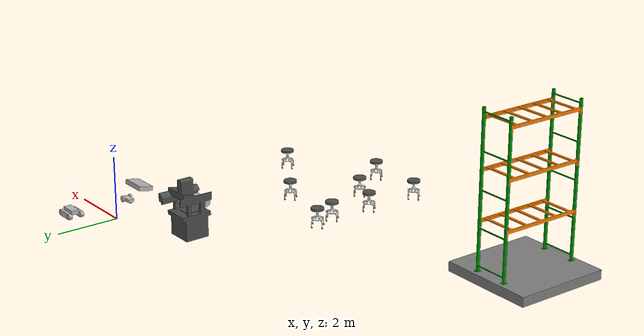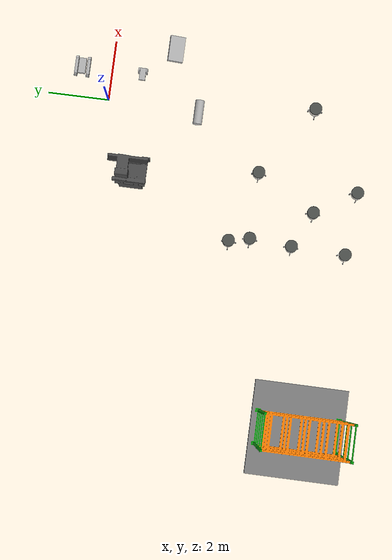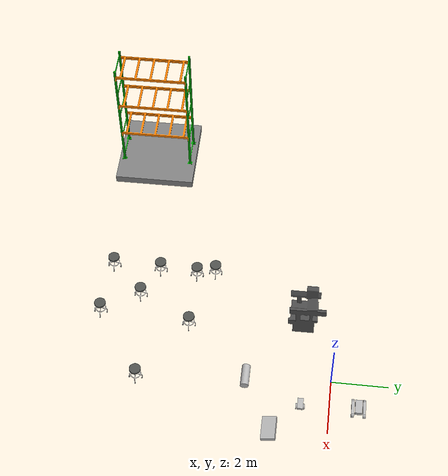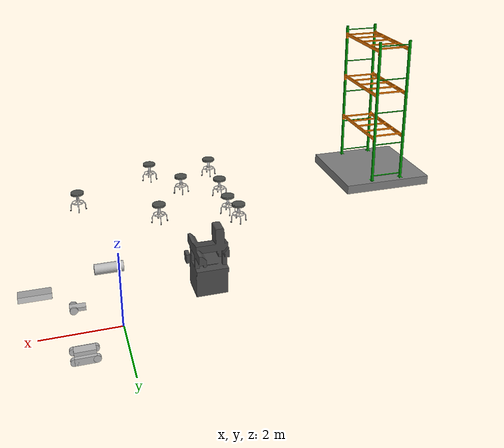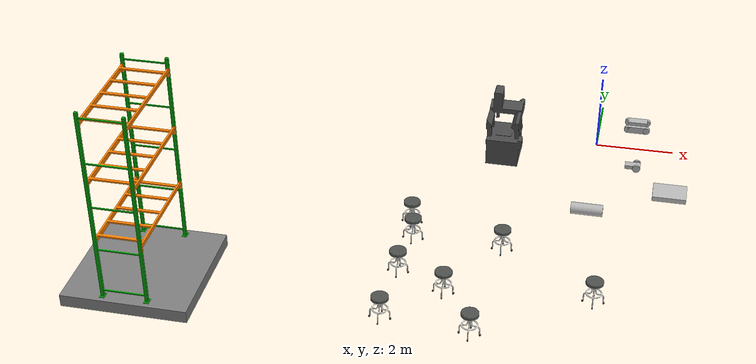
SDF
<sdf version="1.6">
 <world name="default">
  <include><uri>model://sun</uri></include>
  <gravity>0 0 -9.8</gravity>
  <magnetic_field>6e-06 2.3e-05 -4.2e-05</magnetic_field>
  <atmosphere type="adiabatic"/>
  <physics type="ode">
   <max_step_size>0.003</max_step_size>
   <real_time_factor>1</real_time_factor>
   <real_time_update_rate>500</real_time_update_rate>
   <ode>
    <solver>
     <type>quick</type>
     <precon_iters>30</precon_iters>
     <thread_position_correction>1</thread_position_correction>
     <use_dynamic_moi_rescaling>1</use_dynamic_moi_rescaling>
    </solver>
    <constraints><contact_max_correcting_vel>10</contact_max_correcting_vel></constraints>
   </ode>
  </physics>
  <scene><ambient>0.5 0.5 0.5 1</ambient><background>0.8 0.8 0.8 1</background><shadows>1</shadows></scene>
  <spherical_coordinates>
   <surface_model>EARTH_WGS84</surface_model>
   <latitude_deg>0</latitude_deg>
   <longitude_deg>0</longitude_deg>
   <elevation>0</elevation>
   <heading_deg>0</heading_deg>
  </spherical_coordinates>
  <include><uri>model://tread_drv_robot</uri><pose>1 1 0.1 0 0 0</pose></include>
  <include>
   <uri>model://diff_drv_robot</uri>
   <name>differential_drv_robot</name>
   <pose>1 -1 0 0 0 0</pose>
  </include>
  <model name="cylinder_obstacle">
   <static>1</static>
   <pose>0 -3 -0.06 0 0 0</pose>
   <link name="cylinder">
    <collision name="cylinder_collision">
     <pose>0 0 0 0 1.570796327 0</pose>
     <geometry><cylinder><radius>0.15</radius><length>0.8</length></cylinder></geometry>
     <surface><friction><ode><mu>1</mu></ode></friction></surface>
    </collision>
    <visual name="cylinder_visual">
     <pose>0 0 0 0 1.570796327 0</pose>
     <geometry><cylinder><radius>0.15</radius><length>0.8</length></cylinder></geometry>
    </visual>
   </link>
  </model>
  <model name="box_obstacle">
   <static>1</static>
   <pose>2 -2 0.028 1.7821 0 0</pose>
   <link name="box">
    <collision name="box_collision">
     <geometry><box><size>0.85 0.15 0.50</size></box></geometry>
     <surface><friction><ode><mu>1</mu></ode></friction></surface>
    </collision>
    <visual name="box_visual"><geometry><box><size>0.85 0.15 0.50</size></box></geometry></visual>
   </link>
  </model>
  <include><uri>model://CMM</uri><name>CMM</name><pose>-2.8 -1.6 0 0 -0 0</pose></include>
  <include><uri>model://palletRack</uri><name>palletRack</name><pose>-10 -7.5 0 0 -0 1.57</pose></include>
  <include><uri>model://stool</uri><name>stool</name><pose>-2.09016 -8.47865 0 0 -0 0</pose></include>
  <include><uri>model://stool</uri><name>stool_0</name><pose>-4.14838 -8.31827 0 0 -0 0</pose></include>
  <include><uri>model://stool</uri><name>stool_1</name><pose>-4.09545 -6.56113 0 0 -0 0</pose></include>
  <include><uri>model://stool</uri><name>stool_2</name><pose>-4.00957 -5.19123 0 0 -0 0</pose></include>
  <include><uri>model://stool</uri><name>stool_3</name><pose>-4.16423 -4.51727 0 0 -0 0</pose></include>
  <include><uri>model://stool</uri><name>stool_4</name><pose>-2.91792 -7.13372 0 0 -0 0</pose></include>
  <include><uri>model://stool</uri><name>stool_5</name><pose>-1.83382 -5.21659 0 0 -0 0</pose></include>
  <include><uri>model://stool</uri><name>stool_6</name><pose>0.484549 -6.79469 0 0 -0 0</pose></include>
 </world>
</sdf>

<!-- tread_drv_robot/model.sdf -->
<sdf version='1.4'>
  <model name="simple_tracked">

    <pose frame=''>0 3 0.1 0 0 -1.5708</pose>

    <link name='base_link'>
        <pose frame=''>0 0 0 0 -0 0</pose>
        <inertial>
            <pose frame=''>0 0 0.118 1.5708 -0 0</pose>
            <mass>13.14</mass>
            <inertia>
                <ixx>0.10019</ixx>
                <ixy>0</ixy>
                <ixz>0</ixz>
                <iyy>0.345043</iyy>
                <iyz>0</iyz>
                <izz>0.302044</izz>
            </inertia>
        </inertial>
        <collision name='base_link_collision'>
            <pose frame=''>0 0 0.118 0 -0 0</pose>
            <geometry>
                <box>
                    <size>0.50017 0.24093 0.139</size>
                </box>
            </geometry>
        </collision>
        <visual name='base_link_visual'>
            <pose frame=''>0 0 0.118 0 -0 0</pose>
            <geometry>
                <box>
                    <size>0.50017 0.24093 0.139</size>
                </box>
            </geometry>
        </visual>
        <self_collide>0</self_collide>
        <gravity>1</gravity>
        <kinematic>0</kinematic>
    </link>

    <link name='left_track'>
        <pose frame=''>0 0.1985 0 0 -0 0</pose>
        <inertial>
            <pose frame=''>0 0 0.0141 0 -0 0</pose>
            <mass>6.06</mass>
            <inertia>
                <ixx>0.002731</ixx>
                <ixy>0</ixy>
                <ixz>0</ixz>
                <iyy>0.032554</iyy>
                <iyz>1.5e-05</iyz>
                <izz>0.031391</izz>
            </inertia>
        </inertial>
        <collision name='left_track_collision'>
            <pose frame=''>0 0 0.01855 1.5708 -0 1.5708</pose>
            <geometry>
                <box>
                    <size>0.09728 0.18094 0.5</size>
                </box>
            </geometry>
            <surface>
                <friction>
                    <ode>
                        <mu>0.7</mu>
                        <mu2>150</mu2>
                        <fdir1>0 1 0</fdir1>
                    </ode>
                </friction>
            </surface>
        </collision>
        <collision name='left_track_collision_1'>
            <pose frame=''>0.25 0 0.01855 1.5708 -0 0</pose>
            <geometry>
                <cylinder>
                    <length>0.09728</length>
                    <radius>0.09047</radius>
                </cylinder>
            </geometry>
            <surface>
                <friction>
                    <ode>
                        <mu>0.7</mu>
                        <mu2>150</mu2>
                        <fdir1>0 1 0</fdir1>
                    </ode>
                </friction>
            </surface>
        </collision>
        <collision name='left_track_collision_2'>
            <pose frame=''>-0.25 0 0.01855 1.5708 -0 0</pose>
            <geometry>
                <cylinder>
                    <length>0.09728</length>
                    <radius>0.09047</radius>
                </cylinder>
            </geometry>
            <surface>
                <friction>
                    <ode>
                        <mu>0.7</mu>
                        <mu2>150</mu2>
                        <fdir1>0 1 0</fdir1>
                    </ode>
                </friction>
            </surface>
        </collision>
        <visual name='left_track_visual'>
            <pose frame=''>0 0 0.01855 1.5708 -0 1.5708</pose>
            <geometry>
                <box>
                    <size>0.09728 0.18094 0.5</size>
                </box>
            </geometry>
        </visual>
        <visual name='left_track_visual_1'>
            <pose frame=''>0.25 0 0.01855 1.5708 -0 0</pose>
            <geometry>
                <cylinder>
                    <length>0.09728</length>
                    <radius>0.09047</radius>
                </cylinder>
            </geometry>
        </visual>
        <visual name='left_track_visual_2'>
            <pose frame=''>-0.25 0 0.01855 1.5708 -0 0</pose>
            <geometry>
                <cylinder>
                    <length>0.09728</length>
                    <radius>0.09047</radius>
                </cylinder>
            </geometry>
        </visual>
        <gravity>1</gravity>
        <kinematic>0</kinematic>
    </link>
    <joint name='left_track_j' type='fixed'>
        <child>left_track</child>
        <parent>base_link</parent>
    </joint>

    <link name='right_track'>
        <pose frame=''>0 -0.1985 0 0 -0 0</pose>
        <inertial>
            <pose frame=''>0 0 0.0141 0 -0 0</pose>
            <mass>6.06</mass>
            <inertia>
                <ixx>0.002731</ixx>
                <ixy>0</ixy>
                <ixz>0</ixz>
                <iyy>0.032554</iyy>
                <iyz>1.5e-05</iyz>
                <izz>0.031391</izz>
            </inertia>
        </inertial>
        <collision name='right_track_collision'>
            <pose frame=''>0 0 0.01855 1.5708 -0 1.5708</pose>
            <geometry>
                <box>
                    <size>0.09728 0.18094 0.5</size>
                </box>
            </geometry>
            <surface>
                <friction>
                    <ode>
                        <mu>0.7</mu>
                        <mu2>150</mu2>
                        <fdir1>0 1 0</fdir1>
                    </ode>
                </friction>
            </surface>
        </collision>
        <collision name='right_track_collision_1'>
            <pose frame=''>0.25 0 0.01855 1.5708 -0 0</pose>
            <geometry>
                <cylinder>
                    <length>0.09728</length>
                    <radius>0.09047</radius>
                </cylinder>
            </geometry>
            <surface>
                <friction>
                    <ode>
                        <mu>0.7</mu>
                        <mu2>150</mu2>
                        <fdir1>0 1 0</fdir1>
                    </ode>
                </friction>
            </surface>
        </collision>
        <collision name='right_track_collision_2'>
            <pose frame=''>-0.25 0 0.01855 1.5708 -0 0</pose>
            <geometry>
                <cylinder>
                    <length>0.09728</length>
                    <radius>0.09047</radius>
                </cylinder>
            </geometry>
            <surface>
                <friction>
                    <ode>
                        <mu>0.7</mu>
                        <mu2>150</mu2>
                        <fdir1>0 1 0</fdir1>
                    </ode>
                </friction>
            </surface>
        </collision>
        <visual name='right_track_visual'>
            <pose frame=''>0 0 0.01855 1.5708 -0 1.5708</pose>
            <geometry>
                <box>
                    <size>0.09728 0.18094 0.5</size>
                </box>
            </geometry>
        </visual>
        <visual name='right_track_visual_1'>
            <pose frame=''>0.25 0 0.01855 1.5708 -0 0</pose>
            <geometry>
                <cylinder>
                    <length>0.09728</length>
                    <radius>0.09047</radius>
                </cylinder>
            </geometry>
        </visual>
        <visual name='right_track_visual_2'>
            <pose frame=''>-0.25 0 0.01855 1.5708 -0 0</pose>
            <geometry>
                <cylinder>
                    <length>0.09728</length>
                    <radius>0.09047</radius>
                </cylinder>
            </geometry>
        </visual>
        <gravity>1</gravity>
        <kinematic>0</kinematic>
    </link>
    <joint name='right_track_j' type='fixed'>
        <child>right_track</child>
        <parent>base_link</parent>
    </joint>

    <plugin filename="libSimpleTrackedVehiclePlugin_ROS.so" name="simple_tracked_vehicle">
        <body>base_link</body>
        <left_track>left_track</left_track>
        <right_track>right_track</right_track>
        <track_mu>1.2</track_mu>
        <track_mu2>0.2</track_mu2>
    </plugin>

    <plugin filename="libKeysToCmdVelPlugin.so" name="keyboard_control">
        <publish_as_twist>true</publish_as_twist>
        <cmd_vel_topic>~/simple_tracked/cmd_vel_twist</cmd_vel_topic>
    </plugin>
  </model>
</sdf>

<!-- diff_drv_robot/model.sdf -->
<sdf version='1.4'>
  <model name="diff_drv_robot">
    <!-- For debug purpose Only: When configuring the robot structure,
         setting static to true such that the robot is ignored by the physics engine.
      -->

    <!-- Robot chassis -->
    <link name='chassis'>
      <pose>0 0 0.1 0 0 0</pose>

      <collision name='collision'>
        <geometry>
          <box>
            <size>0.4 0.2 0.1</size>
          </box>
        </geometry>
      </collision>

      <visual name='visual'>
        <geometry>
          <box>
            <size>0.4 0.2 0.1</size>
          </box>
        </geometry>
      </visual>

      <!-- Adding a caster -->
      <collision name='caster_collision'>
        <pose>-0.15 0 -0.05 0 0 0</pose>
        <geometry>
          <sphere>
            <radius>0.05</radius>
          </sphere>
        </geometry>

        <surface>
          <friction>
            <ode>
              <mu>0</mu>
              <mu2>0</mu2>
              <slip1>1.0</slip1>
              <slip2>1.0</slip2>
            </ode>
          </friction>
        </surface>
      </collision>

      <visual name='caster_visual'>
        <pose>-0.15 0 -0.05 0 0 0</pose>
        <geometry>
          <sphere>
            <radius>0.05</radius>
          </sphere>
        </geometry>
      </visual>
    </link>

    <!-- Left Wheel -->
    <link name="left_wheel">
      <pose>0.1 0.13 0.1 0 1.5707 1.5707</pose>
      <collision name="collision">
        <geometry>
          <cylinder>
            <radius>0.1</radius>
            <length>0.05</length>
          </cylinder>
        </geometry>
      </collision>
      <visual name="visual">
        <geometry>
          <cylinder>
            <radius>0.1</radius>
            <length>0.05</length>
          </cylinder>
        </geometry>
      </visual>
    </link>

    <!-- Right Wheel -->
    <link name="right_wheel">
      <pose>0.1 -0.13 0.1 0 1.5707 1.5707</pose>
      <collision name="collision">
        <geometry>
          <cylinder>
            <radius>.1</radius>
            <length>.05</length>
          </cylinder>
        </geometry>
      </collision>
      <visual name="visual">
        <geometry>
          <cylinder>
            <radius>.1</radius>
            <length>.05</length>
          </cylinder>
        </geometry>
      </visual>
    </link>

    <!-- Wheel revolute joints -->
    <joint type="revolute" name="left_wheel_hinge">
      <pose>0 0 -0.03 0 0 0</pose>
      <child>left_wheel</child>
      <parent>chassis</parent>
      <axis>
        <xyz>0 1 0</xyz>
      </axis>
    </joint>

    <joint type="revolute" name="right_wheel_hinge">
      <pose>0 0 0.03 0 0 0</pose>
      <child>right_wheel</child>
      <parent>chassis</parent>
      <axis>
        <xyz>0 1 0</xyz>
      </axis>
    </joint>

  </model>
</sdf>

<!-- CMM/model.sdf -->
<sdf version='1.6'>
  <model name='CMM'>
    <static>1</static>
    <link name='link'>
      <pose>0 0 0 0 -0 0</pose>
      <visual name='visual'>
        <geometry>
          <mesh>
            <uri>CMM_Model.stl</uri>
            <!-- Inches to Meters -->
            <scale>0.0254 0.0254 0.0254</scale>
          </mesh>
        </geometry>
        <material>
          <ambient>0.4 0.4 0.4 1</ambient>
          <diffuse>0.3 0.3 0.3 1</diffuse>
          <specular>0.01 0.01 0.01 1</specular>
          <emissive>0 0 0 1</emissive>
        </material>
      </visual>
      <collision name='collision'>
        <geometry>
          <mesh>
            <uri>CMM_Model.stl</uri>
            <scale>0.0254 0.0254 0.0254</scale>
          </mesh>
        </geometry>
      </collision>
    </link>
  </model>
</sdf>

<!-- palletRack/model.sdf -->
<sdf version='1.6'>
  <model name='palletRack'>
    <static>1</static>
    <link name='link'>
      <pose>0 0 0 0 -0 0</pose>
      <visual name='visual'>
        <pose>0 0 0 0 -0 0</pose>
        <geometry>
          <mesh>
            <uri>palletRack.dae</uri>
            <scale>1 1 1</scale>
          </mesh>
        </geometry>
      </visual>
      <collision name='collision'>
        <pose>0 0 0 0 -0 0</pose>
        <geometry>
          <mesh>
            <uri>palletRack.dae</uri>
            <scale>1 1 1</scale>
          </mesh>
        </geometry>
      </collision>
    </link>
  </model>
</sdf>

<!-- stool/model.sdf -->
<sdf version='1.6'>
  <model name='stool'>
    <static>1</static>
    <link name='link'>
      <pose>0 0 0 0 -0 0</pose>
      <visual name='visual'>
        <pose>0 0 0 0 -0 0</pose>
        <geometry>
          <mesh>
            <uri>stool.dae</uri>
            <scale>1 1 1</scale>
          </mesh>
        </geometry>
      </visual>
      <collision name='collision'>
        <geometry>
          <mesh>
            <uri>stool.dae</uri>
            <scale>1 1 1</scale>
          </mesh>
        </geometry>
      </collision>
    </link>
  </model>
</sdf>
